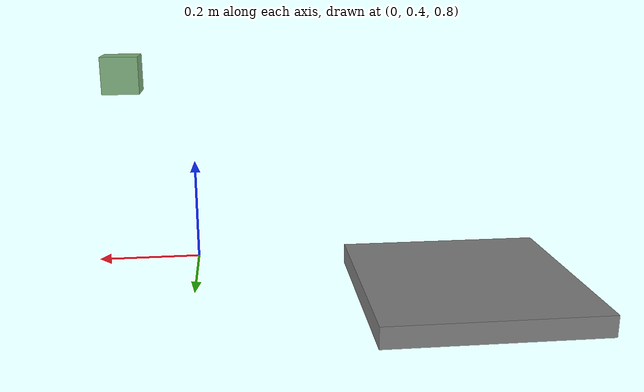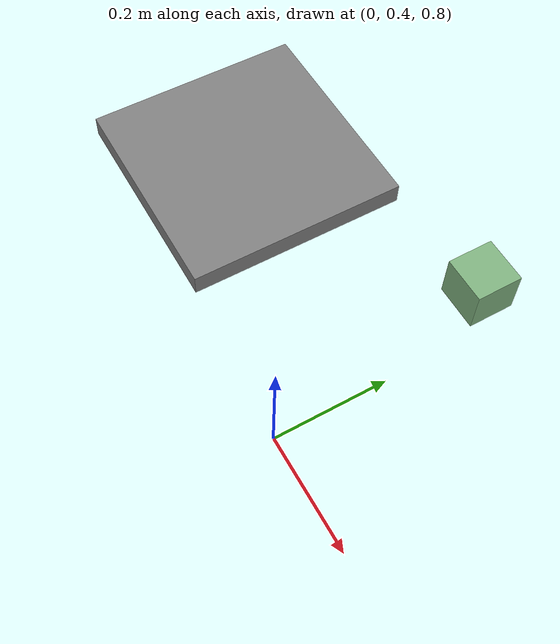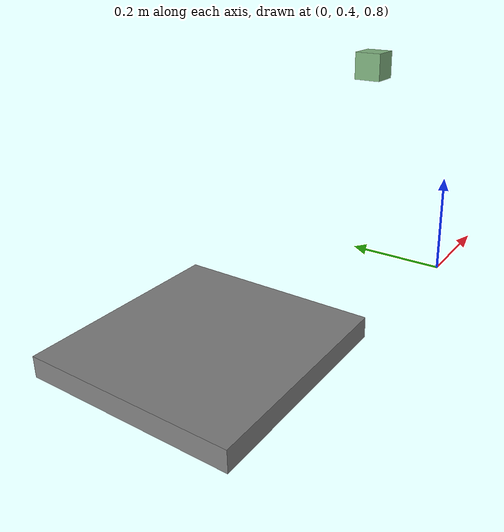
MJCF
<mujoco model="Objs">
  <worldbody>
  <!--Grasped Object-->
      <body mocap='true' name="pourcube" pos="0.1 0.62 1.2">
          <body name="rigid_cube">
              <inertial pos="0 0 0" mass="2.0" diaginertia="0.0102675 0.0102675 0.00666"/>
              <joint armature="0" axis="1 0 0" damping="0" limited="true" name="box_1_x" pos="0 0 0" range="-5. 5." stiffness="0" type="slide"/>
              <joint armature="0" axis="0 1 0" damping="0" limited="true" name="box_1_y" pos="0 0 0" range="-5. 5." stiffness="0" type="slide"/>
              <joint armature="0" axis="0 0 1" damping="0" limited="true" name="box_1_z" pos="0 0 0" range="-2. 2." stiffness="0" type="slide"/>
              <joint armature="0" damping="0" name="box_1_rot" pos="0 0 0" stiffness="0" type="ball"/>
              <geom type="box" size="0.03 0.03 0.03" rgba=".5 .7 .5 1" friction="1 1 1"/>
          </body>
      </body>
       <!--fix area-->
      <body mocap='true' name="grab_obj" pos="-0.5 0.62 0.8">
<!--          ! for matching task observation-->
          <site name="obj_state" pos="0 0 0"/>
          <geom type="box" size="0.2 0.2 0.02" friction="1 1 1" contype="0" conaffinity="0"/>
      </body>
  </worldbody>

</mujoco>
